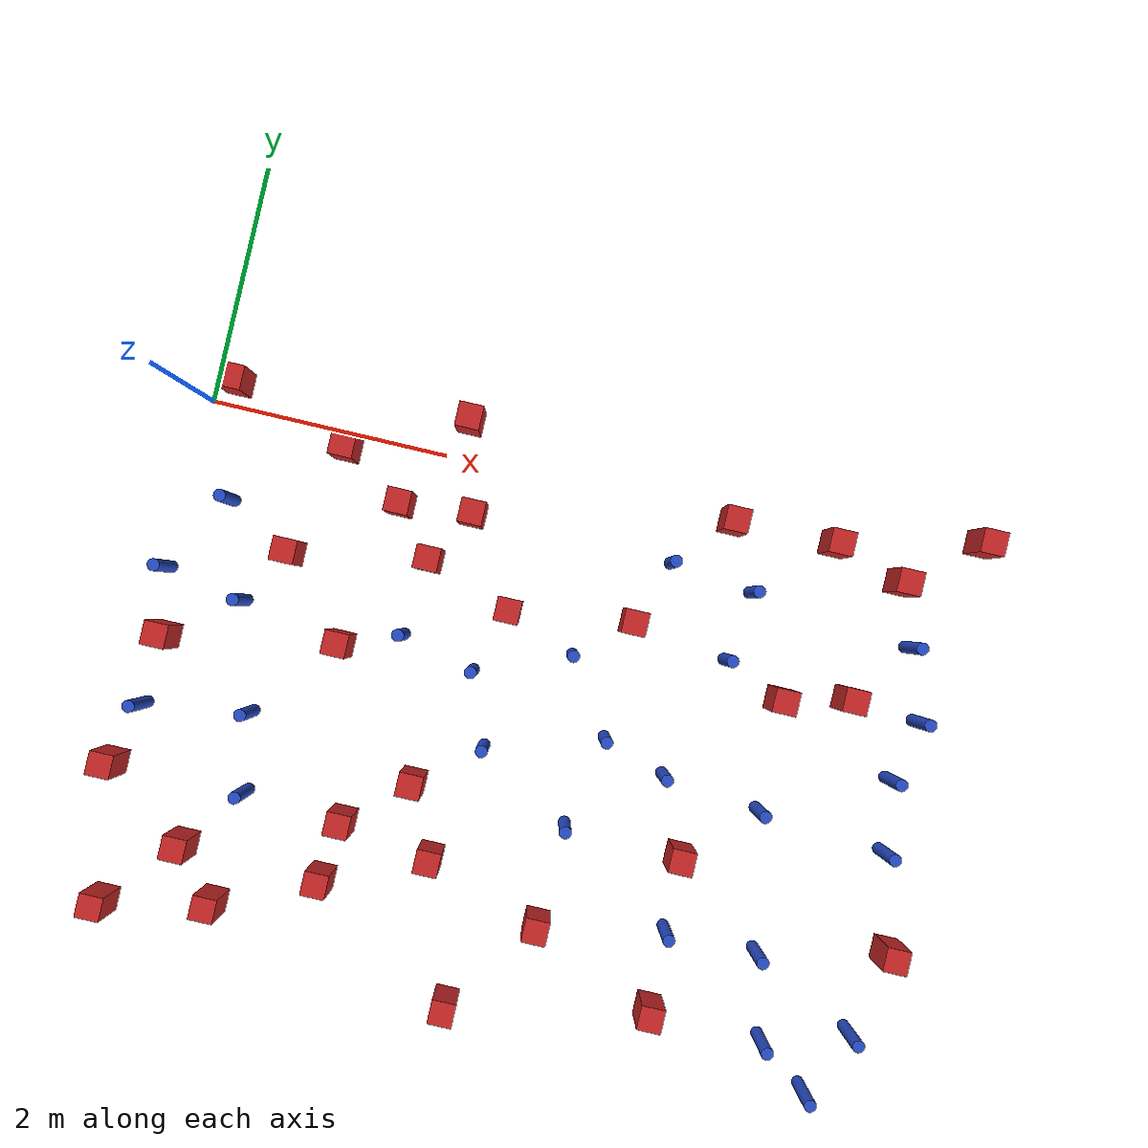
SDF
<sdf version="1.6">
 <model name="dense_38">
  <model name="square_post_obstacle0">
   <static>true</static>
   <pose>5.15000023231 -1.34860133683 8.22691968438e-08 7.2212513382e-06 -7.54495500217e-07 2.29674213826e-05</pose>
   <link name="link">
    <pose>0 0 0.25 0 -0 0</pose>
    <inertial>
     <mass>100</mass>
     <inertia>
      <ixx>0.166667</ixx>
      <ixy>0</ixy>
      <ixz>0</ixz>
      <iyy>0.166667</iyy>
      <iyz>0</iyz>
      <izz>0.166667</izz>
     </inertia>
    </inertial>
    <collision name="collision"><geometry><box><size>.2 .2 .5</size></box></geometry></collision>
    <visual name="visual">
     <geometry><box><size>.2 .2 .5</size></box></geometry>
     <material>
      <script><name>Gazebo/Red</name><uri>file://media/materials/scripts/gazebo.material</uri></script>
     </material>
    </visual>
   </link>
  </model>
  <model name="pole_obstacle0">
   <static>true</static>
   <pose>6.25939533136 -2.37629695557 2.88873142074e-08 -9.90536690245e-09 4.6021994898e-07 -1.20965994966e-07</pose>
   <link name="link">
    <pose>0 0 0.3 0 -0 0</pose>
    <inertial>
     <mass>1</mass>
     <inertia><ixx>0.145833</ixx><ixy>0</ixy><ixz>0</ixz><iyy>0.145833</iyy><iyz>0</iyz><izz>0.125</izz></inertia>
    </inertial>
    <collision name="collision">
     <geometry><cylinder><radius>0.05</radius><length>.6</length></cylinder></geometry>
    </collision>
    <visual name="visual">
     <geometry><cylinder><radius>0.05</radius><length>.6</length></cylinder></geometry>
     <material>
      <script><name>Gazebo/Blue</name><uri>file://media/materials/scripts/gazebo.material</uri></script>
     </material>
    </visual>
   </link>
  </model>
  <model name="square_post_obstacle9">
   <static>true</static>
   <pose>0.956388180386 -4.03698732437 8.22691968438e-08 7.22125133819e-06 -7.54495500217e-07 2.29674213826e-05</pose>
   <link name="link">
    <pose>0 0 0.25 0 -0 0</pose>
    <inertial>
     <mass>100</mass>
     <inertia>
      <ixx>0.166667</ixx>
      <ixy>0</ixy>
      <ixz>0</ixz>
      <iyy>0.166667</iyy>
      <iyz>0</iyz>
      <izz>0.166667</izz>
     </inertia>
    </inertial>
    <collision name="collision"><geometry><box><size>.2 .2 .5</size></box></geometry></collision>
    <visual name="visual">
     <geometry><box><size>.2 .2 .5</size></box></geometry>
     <material>
      <script><name>Gazebo/Red</name><uri>file://media/materials/scripts/gazebo.material</uri></script>
     </material>
    </visual>
   </link>
  </model>
  <model name="square_post_obstacle17">
   <static>true</static>
   <pose>4.66868153729 -4.08071297045 8.22691968438e-08 7.2212513382e-06 -7.54495500217e-07 2.29674213826e-05</pose>
   <link name="link">
    <pose>0 0 0.25 0 -0 0</pose>
    <inertial>
     <mass>100</mass>
     <inertia>
      <ixx>0.166667</ixx>
      <ixy>0</ixy>
      <ixz>0</ixz>
      <iyy>0.166667</iyy>
      <iyz>0</iyz>
      <izz>0.166667</izz>
     </inertia>
    </inertial>
    <collision name="collision"><geometry><box><size>.2 .2 .5</size></box></geometry></collision>
    <visual name="visual">
     <geometry><box><size>.2 .2 .5</size></box></geometry>
     <material>
      <script><name>Gazebo/Red</name><uri>file://media/materials/scripts/gazebo.material</uri></script>
     </material>
    </visual>
   </link>
  </model>
  <model name="square_post_obstacle20">
   <static>true</static>
   <pose>2.62762132053 -3.26762497386 8.22691968438e-08 7.2212513382e-06 -7.54495500217e-07 2.29674213826e-05</pose>
   <link name="link">
    <pose>0 0 0.25 0 -0 0</pose>
    <inertial>
     <mass>100</mass>
     <inertia>
      <ixx>0.166667</ixx>
      <ixy>0</ixy>
      <ixz>0</ixz>
      <iyy>0.166667</iyy>
      <iyz>0</iyz>
      <izz>0.166667</izz>
     </inertia>
    </inertial>
    <collision name="collision"><geometry><box><size>.2 .2 .5</size></box></geometry></collision>
    <visual name="visual">
     <geometry><box><size>.2 .2 .5</size></box></geometry>
     <material>
      <script><name>Gazebo/Red</name><uri>file://media/materials/scripts/gazebo.material</uri></script>
     </material>
    </visual>
   </link>
  </model>
  <model name="square_post_obstacle21">
   <static>true</static>
   <pose>0.0648391307138 -4.22650328789 8.22691968438e-08 7.22125133819e-06 -7.54495500217e-07 2.29674213826e-05</pose>
   <link name="link">
    <pose>0 0 0.25 0 -0 0</pose>
    <inertial>
     <mass>100</mass>
     <inertia>
      <ixx>0.166667</ixx>
      <ixy>0</ixy>
      <ixz>0</ixz>
      <iyy>0.166667</iyy>
      <iyz>0</iyz>
      <izz>0.166667</izz>
     </inertia>
    </inertial>
    <collision name="collision"><geometry><box><size>.2 .2 .5</size></box></geometry></collision>
    <visual name="visual">
     <geometry><box><size>.2 .2 .5</size></box></geometry>
     <material>
      <script><name>Gazebo/Red</name><uri>file://media/materials/scripts/gazebo.material</uri></script>
     </material>
    </visual>
   </link>
  </model>
  <model name="square_post_obstacle22">
   <static>true</static>
   <pose>0.930814888783 -1.07541116986 8.22691968438e-08 7.2212513382e-06 -7.54495500217e-07 2.29674213826e-05</pose>
   <link name="link">
    <pose>0 0 0.25 0 -0 0</pose>
    <inertial>
     <mass>100</mass>
     <inertia>
      <ixx>0.166667</ixx>
      <ixy>0</ixy>
      <ixz>0</ixz>
      <iyy>0.166667</iyy>
      <iyz>0</iyz>
      <izz>0.166667</izz>
     </inertia>
    </inertial>
    <collision name="collision"><geometry><box><size>.2 .2 .5</size></box></geometry></collision>
    <visual name="visual">
     <geometry><box><size>.2 .2 .5</size></box></geometry>
     <material>
      <script><name>Gazebo/Red</name><uri>file://media/materials/scripts/gazebo.material</uri></script>
     </material>
    </visual>
   </link>
  </model>
  <model name="pole_obstacle16">
   <static>true</static>
   <pose>-0.0267076855283 -1.42289226915 2.88873142074e-08 -9.90536690152e-09 4.60219948982e-07 -1.20965994964e-07</pose>
   <link name="link">
    <pose>0 0 0.3 0 -0 0</pose>
    <inertial>
     <mass>1</mass>
     <inertia><ixx>0.145833</ixx><ixy>0</ixy><ixz>0</ixz><iyy>0.145833</iyy><iyz>0</iyz><izz>0.125</izz></inertia>
    </inertial>
    <collision name="collision">
     <geometry><cylinder><radius>0.05</radius><length>.6</length></cylinder></geometry>
    </collision>
    <visual name="visual">
     <geometry><cylinder><radius>0.05</radius><length>.6</length></cylinder></geometry>
     <material>
      <script><name>Gazebo/Blue</name><uri>file://media/materials/scripts/gazebo.material</uri></script>
     </material>
    </visual>
   </link>
  </model>
  <model name="square_post_obstacle34">
   <static>true</static>
   <pose>3.0186149603 -4.41609404769 8.22691968438e-08 7.2212513382e-06 -7.54495500217e-07 2.29674213826e-05</pose>
   <link name="link">
    <pose>0 0 0.25 0 -0 0</pose>
    <inertial>
     <mass>100</mass>
     <inertia>
      <ixx>0.166667</ixx>
      <ixy>0</ixy>
      <ixz>0</ixz>
      <iyy>0.166667</iyy>
      <iyz>0</iyz>
      <izz>0.166667</izz>
     </inertia>
    </inertial>
    <collision name="collision"><geometry><box><size>.2 .2 .5</size></box></geometry></collision>
    <visual name="visual">
     <geometry><box><size>.2 .2 .5</size></box></geometry>
     <material>
      <script><name>Gazebo/Red</name><uri>file://media/materials/scripts/gazebo.material</uri></script>
     </material>
    </visual>
   </link>
  </model>
  <model name="square_post_obstacle45">
   <static>true</static>
   <pose>5.90532125554 -0.179946224838 8.22691968438e-08 7.2212513382e-06 -7.54495500217e-07 2.29674213826e-05</pose>
   <link name="link">
    <pose>0 0 0.25 0 -0 0</pose>
    <inertial>
     <mass>100</mass>
     <inertia>
      <ixx>0.166667</ixx>
      <ixy>0</ixy>
      <ixz>0</ixz>
      <iyy>0.166667</iyy>
      <iyz>0</iyz>
      <izz>0.166667</izz>
     </inertia>
    </inertial>
    <collision name="collision"><geometry><box><size>.2 .2 .5</size></box></geometry></collision>
    <visual name="visual">
     <geometry><box><size>.2 .2 .5</size></box></geometry>
     <material>
      <script><name>Gazebo/Red</name><uri>file://media/materials/scripts/gazebo.material</uri></script>
     </material>
    </visual>
   </link>
  </model>
  <model name="pole_obstacle49">
   <static>true</static>
   <pose>6.17570449695 -1.78283865451 2.88873142074e-08 -9.90536689445e-09 4.60219948999e-07 -1.20965994956e-07</pose>
   <link name="link">
    <pose>0 0 0.3 0 -0 0</pose>
    <inertial>
     <mass>1</mass>
     <inertia><ixx>0.145833</ixx><ixy>0</ixy><ixz>0</ixz><iyy>0.145833</iyy><iyz>0</iyz><izz>0.125</izz></inertia>
    </inertial>
    <collision name="collision">
     <geometry><cylinder><radius>0.05</radius><length>.6</length></cylinder></geometry>
    </collision>
    <visual name="visual">
     <geometry><cylinder><radius>0.05</radius><length>.6</length></cylinder></geometry>
     <material>
      <script><name>Gazebo/Blue</name><uri>file://media/materials/scripts/gazebo.material</uri></script>
     </material>
    </visual>
   </link>
  </model>
  <model name="square_post_obstacle53">
   <static>true</static>
   <pose>5.69838929538 -1.21689586837 8.22691968438e-08 7.2212513382e-06 -7.54495500217e-07 2.29674213826e-05</pose>
   <link name="link">
    <pose>0 0 0.25 0 -0 0</pose>
    <inertial>
     <mass>100</mass>
     <inertia>
      <ixx>0.166667</ixx>
      <ixy>0</ixy>
      <ixz>0</ixz>
      <iyy>0.166667</iyy>
      <iyz>0</iyz>
      <izz>0.166667</izz>
     </inertia>
    </inertial>
    <collision name="collision"><geometry><box><size>.2 .2 .5</size></box></geometry></collision>
    <visual name="visual">
     <geometry><box><size>.2 .2 .5</size></box></geometry>
     <material>
      <script><name>Gazebo/Red</name><uri>file://media/materials/scripts/gazebo.material</uri></script>
     </material>
    </visual>
   </link>
  </model>
  <model name="pole_obstacle51">
   <static>true</static>
   <pose>0.0334881697269 -2.56659124649 2.88873142074e-08 -9.9053669241e-09 4.60219948928e-07 -1.20965994988e-07</pose>
   <link name="link">
    <pose>0 0 0.3 0 -0 0</pose>
    <inertial>
     <mass>1</mass>
     <inertia><ixx>0.145833</ixx><ixy>0</ixy><ixz>0</ixz><iyy>0.145833</iyy><iyz>0</iyz><izz>0.125</izz></inertia>
    </inertial>
    <collision name="collision">
     <geometry><cylinder><radius>0.05</radius><length>.6</length></cylinder></geometry>
    </collision>
    <visual name="visual">
     <geometry><cylinder><radius>0.05</radius><length>.6</length></cylinder></geometry>
     <material>
      <script><name>Gazebo/Blue</name><uri>file://media/materials/scripts/gazebo.material</uri></script>
     </material>
    </visual>
   </link>
  </model>
  <model name="square_post_obstacle56">
   <static>true</static>
   <pose>2.14393742067 0.316335618549 8.22691968438e-08 7.2212513382e-06 -7.54495500217e-07 2.29674213826e-05</pose>
   <link name="link">
    <pose>0 0 0.25 0 -0 0</pose>
    <inertial>
     <mass>100</mass>
     <inertia>
      <ixx>0.166667</ixx>
      <ixy>0</ixy>
      <ixz>0</ixz>
      <iyy>0.166667</iyy>
      <iyz>0</iyz>
      <izz>0.166667</izz>
     </inertia>
    </inertial>
    <collision name="collision"><geometry><box><size>.2 .2 .5</size></box></geometry></collision>
    <visual name="visual">
     <geometry><box><size>.2 .2 .5</size></box></geometry>
     <material>
      <script><name>Gazebo/Red</name><uri>file://media/materials/scripts/gazebo.material</uri></script>
     </material>
    </visual>
   </link>
  </model>
  <model name="pole_obstacle53">
   <static>true</static>
   <pose>0.36021376546 -0.764932567973 2.88873142074e-08 -9.9053668986e-09 4.60219948989e-07 -1.20965994961e-07</pose>
   <link name="link">
    <pose>0 0 0.3 0 -0 0</pose>
    <inertial>
     <mass>1</mass>
     <inertia><ixx>0.145833</ixx><ixy>0</ixy><ixz>0</ixz><iyy>0.145833</iyy><iyz>0</iyz><izz>0.125</izz></inertia>
    </inertial>
    <collision name="collision">
     <geometry><cylinder><radius>0.05</radius><length>.6</length></cylinder></geometry>
    </collision>
    <visual name="visual">
     <geometry><cylinder><radius>0.05</radius><length>.6</length></cylinder></geometry>
     <material>
      <script><name>Gazebo/Blue</name><uri>file://media/materials/scripts/gazebo.material</uri></script>
     </material>
    </visual>
   </link>
  </model>
  <model name="pole_obstacle57">
   <static>true</static>
   <pose>3.81146176893 -1.98575136678 2.88873142074e-08 -9.90536689589e-09 4.60219948995e-07 -1.20965994957e-07</pose>
   <link name="link">
    <pose>0 0 0.3 0 -0 0</pose>
    <inertial>
     <mass>1</mass>
     <inertia><ixx>0.145833</ixx><ixy>0</ixy><ixz>0</ixz><iyy>0.145833</iyy><iyz>0</iyz><izz>0.125</izz></inertia>
    </inertial>
    <collision name="collision">
     <geometry><cylinder><radius>0.05</radius><length>.6</length></cylinder></geometry>
    </collision>
    <visual name="visual">
     <geometry><cylinder><radius>0.05</radius><length>.6</length></cylinder></geometry>
     <material>
      <script><name>Gazebo/Blue</name><uri>file://media/materials/scripts/gazebo.material</uri></script>
     </material>
    </visual>
   </link>
  </model>
  <model name="pole_obstacle59">
   <static>true</static>
   <pose>0.915173070467 -2.43668406248 2.88873142074e-08 -9.90536689636e-09 4.60219948994e-07 -1.20965994958e-07</pose>
   <link name="link">
    <pose>0 0 0.3 0 -0 0</pose>
    <inertial>
     <mass>1</mass>
     <inertia><ixx>0.145833</ixx><ixy>0</ixy><ixz>0</ixz><iyy>0.145833</iyy><iyz>0</iyz><izz>0.125</izz></inertia>
    </inertial>
    <collision name="collision">
     <geometry><cylinder><radius>0.05</radius><length>.6</length></cylinder></geometry>
    </collision>
    <visual name="visual">
     <geometry><cylinder><radius>0.05</radius><length>.6</length></cylinder></geometry>
     <material>
      <script><name>Gazebo/Blue</name><uri>file://media/materials/scripts/gazebo.material</uri></script>
     </material>
    </visual>
   </link>
  </model>
  <model name="pole_obstacle61">
   <static>true</static>
   <pose>5.61702403845 -4.10796681776 2.88873142074e-08 -9.90536690842e-09 4.60219948965e-07 -1.20965994976e-07</pose>
   <link name="link">
    <pose>0 0 0.3 0 -0 0</pose>
    <inertial>
     <mass>1</mass>
     <inertia><ixx>0.145833</ixx><ixy>0</ixy><ixz>0</ixz><iyy>0.145833</iyy><iyz>0</iyz><izz>0.125</izz></inertia>
    </inertial>
    <collision name="collision">
     <geometry><cylinder><radius>0.05</radius><length>.6</length></cylinder></geometry>
    </collision>
    <visual name="visual">
     <geometry><cylinder><radius>0.05</radius><length>.6</length></cylinder></geometry>
     <material>
      <script><name>Gazebo/Blue</name><uri>file://media/materials/scripts/gazebo.material</uri></script>
     </material>
    </visual>
   </link>
  </model>
  <model name="pole_obstacle62">
   <static>true</static>
   <pose>0.6490932267 -1.55136444286 2.88873142074e-08 -9.90536689855e-09 4.60219948989e-07 -1.20965994962e-07</pose>
   <link name="link">
    <pose>0 0 0.3 0 -0 0</pose>
    <inertial>
     <mass>1</mass>
     <inertia><ixx>0.145833</ixx><ixy>0</ixy><ixz>0</ixz><iyy>0.145833</iyy><iyz>0</iyz><izz>0.125</izz></inertia>
    </inertial>
    <collision name="collision">
     <geometry><cylinder><radius>0.05</radius><length>.6</length></cylinder></geometry>
    </collision>
    <visual name="visual">
     <geometry><cylinder><radius>0.05</radius><length>.6</length></cylinder></geometry>
     <material>
      <script><name>Gazebo/Blue</name><uri>file://media/materials/scripts/gazebo.material</uri></script>
     </material>
    </visual>
   </link>
  </model>
  <model name="pole_obstacle63">
   <static>true</static>
   <pose>3.39751263166 -1.37505485379 2.88873142074e-08 -9.90536689395e-09 4.60219949e-07 -1.20965994953e-07</pose>
   <link name="link">
    <pose>0 0 0.3 0 -0 0</pose>
    <inertial>
     <mass>1</mass>
     <inertia><ixx>0.145833</ixx><ixy>0</ixy><ixz>0</ixz><iyy>0.145833</iyy><iyz>0</iyz><izz>0.125</izz></inertia>
    </inertial>
    <collision name="collision">
     <geometry><cylinder><radius>0.05</radius><length>.6</length></cylinder></geometry>
    </collision>
    <visual name="visual">
     <geometry><cylinder><radius>0.05</radius><length>.6</length></cylinder></geometry>
     <material>
      <script><name>Gazebo/Blue</name><uri>file://media/materials/scripts/gazebo.material</uri></script>
     </material>
    </visual>
   </link>
  </model>
  <model name="square_post_obstacle66">
   <static>true</static>
   <pose>0.611960380364 -3.62256733812 8.22691968438e-08 7.2212513382e-06 -7.54495500217e-07 2.29674213826e-05</pose>
   <link name="link">
    <pose>0 0 0.25 0 -0 0</pose>
    <inertial>
     <mass>100</mass>
     <inertia>
      <ixx>0.166667</ixx>
      <ixy>0</ixy>
      <ixz>0</ixz>
      <iyy>0.166667</iyy>
      <iyz>0</iyz>
      <izz>0.166667</izz>
     </inertia>
    </inertial>
    <collision name="collision"><geometry><box><size>.2 .2 .5</size></box></geometry></collision>
    <visual name="visual">
     <geometry><box><size>.2 .2 .5</size></box></geometry>
     <material>
      <script><name>Gazebo/Red</name><uri>file://media/materials/scripts/gazebo.material</uri></script>
     </material>
    </visual>
   </link>
  </model>
  <model name="square_post_obstacle70">
   <static>true</static>
   <pose>1.1983245508 -0.134393072571 8.22691968438e-08 7.2212513382e-06 -7.54495500217e-07 2.29674213826e-05</pose>
   <link name="link">
    <pose>0 0 0.25 0 -0 0</pose>
    <inertial>
     <mass>100</mass>
     <inertia>
      <ixx>0.166667</ixx>
      <ixy>0</ixy>
      <ixz>0</ixz>
      <iyy>0.166667</iyy>
      <iyz>0</iyz>
      <izz>0.166667</izz>
     </inertia>
    </inertial>
    <collision name="collision"><geometry><box><size>.2 .2 .5</size></box></geometry></collision>
    <visual name="visual">
     <geometry><box><size>.2 .2 .5</size></box></geometry>
     <material>
      <script><name>Gazebo/Red</name><uri>file://media/materials/scripts/gazebo.material</uri></script>
     </material>
    </visual>
   </link>
  </model>
  <model name="pole_obstacle67">
   <static>true</static>
   <pose>4.64180337466 -1.12756635979 2.88873142074e-08 -9.90536689445e-09 4.60219948999e-07 -1.20965994956e-07</pose>
   <link name="link">
    <pose>0 0 0.3 0 -0 0</pose>
    <inertial>
     <mass>1</mass>
     <inertia><ixx>0.145833</ixx><ixy>0</ixy><ixz>0</ixz><iyy>0.145833</iyy><iyz>0</iyz><izz>0.125</izz></inertia>
    </inertial>
    <collision name="collision">
     <geometry><cylinder><radius>0.05</radius><length>.6</length></cylinder></geometry>
    </collision>
    <visual name="visual">
     <geometry><cylinder><radius>0.05</radius><length>.6</length></cylinder></geometry>
     <material>
      <script><name>Gazebo/Blue</name><uri>file://media/materials/scripts/gazebo.material</uri></script>
     </material>
    </visual>
   </link>
  </model>
  <model name="square_post_obstacle72">
   <static>true</static>
   <pose>1.73642511763 -0.480586093212 8.22691968438e-08 7.2212513382e-06 -7.54495500217e-07 2.29674213826e-05</pose>
   <link name="link">
    <pose>0 0 0.25 0 -0 0</pose>
    <inertial>
     <mass>100</mass>
     <inertia>
      <ixx>0.166667</ixx>
      <ixy>0</ixy>
      <ixz>0</ixz>
      <iyy>0.166667</iyy>
      <iyz>0</iyz>
      <izz>0.166667</izz>
     </inertia>
    </inertial>
    <collision name="collision"><geometry><box><size>.2 .2 .5</size></box></geometry></collision>
    <visual name="visual">
     <geometry><box><size>.2 .2 .5</size></box></geometry>
     <material>
      <script><name>Gazebo/Red</name><uri>file://media/materials/scripts/gazebo.material</uri></script>
     </material>
    </visual>
   </link>
  </model>
  <model name="pole_obstacle70">
   <static>true</static>
   <pose>5.17681594677 -2.2753764297 2.88873142074e-08 -9.90536690245e-09 4.6021994898e-07 -1.20965994966e-07</pose>
   <link name="link">
    <pose>0 0 0.3 0 -0 0</pose>
    <inertial>
     <mass>1</mass>
     <inertia><ixx>0.145833</ixx><ixy>0</ixy><ixz>0</ixz><iyy>0.145833</iyy><iyz>0</iyz><izz>0.125</izz></inertia>
    </inertial>
    <collision name="collision">
     <geometry><cylinder><radius>0.05</radius><length>.6</length></cylinder></geometry>
    </collision>
    <visual name="visual">
     <geometry><cylinder><radius>0.05</radius><length>.6</length></cylinder></geometry>
     <material>
      <script><name>Gazebo/Blue</name><uri>file://media/materials/scripts/gazebo.material</uri></script>
     </material>
    </visual>
   </link>
  </model>
  <model name="pole_obstacle71">
   <static>true</static>
   <pose>1.99498741161 -1.52946648929 2.88873142074e-08 -9.90536691173e-09 4.60219948958e-07 -1.20965994982e-07</pose>
   <link name="link">
    <pose>0 0 0.3 0 -0 0</pose>
    <inertial>
     <mass>1</mass>
     <inertia><ixx>0.145833</ixx><ixy>0</ixy><ixz>0</ixz><iyy>0.145833</iyy><iyz>0</iyz><izz>0.125</izz></inertia>
    </inertial>
    <collision name="collision">
     <geometry><cylinder><radius>0.05</radius><length>.6</length></cylinder></geometry>
    </collision>
    <visual name="visual">
     <geometry><cylinder><radius>0.05</radius><length>.6</length></cylinder></geometry>
     <material>
      <script><name>Gazebo/Blue</name><uri>file://media/materials/scripts/gazebo.material</uri></script>
     </material>
    </visual>
   </link>
  </model>
  <model name="pole_obstacle72">
   <static>true</static>
   <pose>5.41871702903 -3.41380591752 2.88873142074e-08 -9.90536690245e-09 4.6021994898e-07 -1.20965994966e-07</pose>
   <link name="link">
    <pose>0 0 0.3 0 -0 0</pose>
    <inertial>
     <mass>1</mass>
     <inertia><ixx>0.145833</ixx><ixy>0</ixy><ixz>0</ixz><iyy>0.145833</iyy><iyz>0</iyz><izz>0.125</izz></inertia>
    </inertial>
    <collision name="collision">
     <geometry><cylinder><radius>0.05</radius><length>.6</length></cylinder></geometry>
    </collision>
    <visual name="visual">
     <geometry><cylinder><radius>0.05</radius><length>.6</length></cylinder></geometry>
     <material>
      <script><name>Gazebo/Blue</name><uri>file://media/materials/scripts/gazebo.material</uri></script>
     </material>
    </visual>
   </link>
  </model>
  <model name="pole_obstacle80">
   <static>true</static>
   <pose>2.62581547635 -1.68750381354 2.88873142074e-08 -9.90536689395e-09 4.60219949e-07 -1.20965994953e-07</pose>
   <link name="link">
    <pose>0 0 0.3 0 -0 0</pose>
    <inertial>
     <mass>1</mass>
     <inertia><ixx>0.145833</ixx><ixy>0</ixy><ixz>0</ixz><iyy>0.145833</iyy><iyz>0</iyz><izz>0.125</izz></inertia>
    </inertial>
    <collision name="collision">
     <geometry><cylinder><radius>0.05</radius><length>.6</length></cylinder></geometry>
    </collision>
    <visual name="visual">
     <geometry><cylinder><radius>0.05</radius><length>.6</length></cylinder></geometry>
     <material>
      <script><name>Gazebo/Blue</name><uri>file://media/materials/scripts/gazebo.material</uri></script>
     </material>
    </visual>
   </link>
  </model>
  <model name="pole_obstacle94">
   <static>true</static>
   <pose>6.29122546616 -1.26858974739 2.88873142074e-08 -9.90536689445e-09 4.60219948999e-07 -1.20965994956e-07</pose>
   <link name="link">
    <pose>0 0 0.3 0 -0 0</pose>
    <inertial>
     <mass>1</mass>
     <inertia><ixx>0.145833</ixx><ixy>0</ixy><ixz>0</ixz><iyy>0.145833</iyy><iyz>0</iyz><izz>0.125</izz></inertia>
    </inertial>
    <collision name="collision">
     <geometry><cylinder><radius>0.05</radius><length>.6</length></cylinder></geometry>
    </collision>
    <visual name="visual">
     <geometry><cylinder><radius>0.05</radius><length>.6</length></cylinder></geometry>
     <material>
      <script><name>Gazebo/Blue</name><uri>file://media/materials/scripts/gazebo.material</uri></script>
     </material>
    </visual>
   </link>
  </model>
  <model name="square_post_obstacle88">
   <static>true</static>
   <pose>1.78910252763 -3.64294460698 8.22691968438e-08 7.2212513382e-06 -7.54495500217e-07 2.29674213826e-05</pose>
   <link name="link">
    <pose>0 0 0.25 0 -0 0</pose>
    <inertial>
     <mass>100</mass>
     <inertia>
      <ixx>0.166667</ixx>
      <ixy>0</ixy>
      <ixz>0</ixz>
      <iyy>0.166667</iyy>
      <iyz>0</iyz>
      <izz>0.166667</izz>
     </inertia>
    </inertial>
    <collision name="collision"><geometry><box><size>.2 .2 .5</size></box></geometry></collision>
    <visual name="visual">
     <geometry><box><size>.2 .2 .5</size></box></geometry>
     <material>
      <script><name>Gazebo/Red</name><uri>file://media/materials/scripts/gazebo.material</uri></script>
     </material>
    </visual>
   </link>
  </model>
  <model name="pole_obstacle101">
   <static>true</static>
   <pose>3.65120811873 -2.75701727651 2.88873142074e-08 -9.90536690232e-09 4.6021994898e-07 -1.20965994968e-07</pose>
   <link name="link">
    <pose>0 0 0.3 0 -0 0</pose>
    <inertial>
     <mass>1</mass>
     <inertia><ixx>0.145833</ixx><ixy>0</ixy><ixz>0</ixz><iyy>0.145833</iyy><iyz>0</iyz><izz>0.125</izz></inertia>
    </inertial>
    <collision name="collision">
     <geometry><cylinder><radius>0.05</radius><length>.6</length></cylinder></geometry>
    </collision>
    <visual name="visual">
     <geometry><cylinder><radius>0.05</radius><length>.6</length></cylinder></geometry>
     <material>
      <script><name>Gazebo/Blue</name><uri>file://media/materials/scripts/gazebo.material</uri></script>
     </material>
    </visual>
   </link>
  </model>
  <model name="square_post_obstacle91">
   <static>true</static>
   <pose>2.33659479608 -0.430204943164 8.22691968438e-08 7.2212513382e-06 -7.54495500217e-07 2.29674213826e-05</pose>
   <link name="link">
    <pose>0 0 0.25 0 -0 0</pose>
    <inertial>
     <mass>100</mass>
     <inertia>
      <ixx>0.166667</ixx>
      <ixy>0</ixy>
      <ixz>0</ixz>
      <iyy>0.166667</iyy>
      <iyz>0</iyz>
      <izz>0.166667</izz>
     </inertia>
    </inertial>
    <collision name="collision"><geometry><box><size>.2 .2 .5</size></box></geometry></collision>
    <visual name="visual">
     <geometry><box><size>.2 .2 .5</size></box></geometry>
     <material>
      <script><name>Gazebo/Red</name><uri>file://media/materials/scripts/gazebo.material</uri></script>
     </material>
    </visual>
   </link>
  </model>
  <model name="square_post_obstacle96">
   <static>true</static>
   <pose>1.8545225363 -3.13658529245 8.22691968438e-08 7.2212513382e-06 -7.54495500217e-07 2.29674213826e-05</pose>
   <link name="link">
    <pose>0 0 0.25 0 -0 0</pose>
    <inertial>
     <mass>100</mass>
     <inertia>
      <ixx>0.166667</ixx>
      <ixy>0</ixy>
      <ixz>0</ixz>
      <iyy>0.166667</iyy>
      <iyz>0</iyz>
      <izz>0.166667</izz>
     </inertia>
    </inertial>
    <collision name="collision"><geometry><box><size>.2 .2 .5</size></box></geometry></collision>
    <visual name="visual">
     <geometry><box><size>.2 .2 .5</size></box></geometry>
     <material>
      <script><name>Gazebo/Red</name><uri>file://media/materials/scripts/gazebo.material</uri></script>
     </material>
    </visual>
   </link>
  </model>
  <model name="pole_obstacle109">
   <static>true</static>
   <pose>4.02232846109 -0.450491445531 2.88873142074e-08 -9.90536689318e-09 4.60219949002e-07 -1.20965994954e-07</pose>
   <link name="link">
    <pose>0 0 0.3 0 -0 0</pose>
    <inertial>
     <mass>1</mass>
     <inertia><ixx>0.145833</ixx><ixy>0</ixy><ixz>0</ixz><iyy>0.145833</iyy><iyz>0</iyz><izz>0.125</izz></inertia>
    </inertial>
    <collision name="collision">
     <geometry><cylinder><radius>0.05</radius><length>.6</length></cylinder></geometry>
    </collision>
    <visual name="visual">
     <geometry><cylinder><radius>0.05</radius><length>.6</length></cylinder></geometry>
     <material>
      <script><name>Gazebo/Blue</name><uri>file://media/materials/scripts/gazebo.material</uri></script>
     </material>
    </visual>
   </link>
  </model>
  <model name="square_post_obstacle106">
   <static>true</static>
   <pose>2.0708841121 -0.876182557828 8.22691968438e-08 7.2212513382e-06 -7.54495500217e-07 2.29674213826e-05</pose>
   <link name="link">
    <pose>0 0 0.25 0 -0 0</pose>
    <inertial>
     <mass>100</mass>
     <inertia>
      <ixx>0.166667</ixx>
      <ixy>0</ixy>
      <ixz>0</ixz>
      <iyy>0.166667</iyy>
      <iyz>0</iyz>
      <izz>0.166667</izz>
     </inertia>
    </inertial>
    <collision name="collision"><geometry><box><size>.2 .2 .5</size></box></geometry></collision>
    <visual name="visual">
     <geometry><box><size>.2 .2 .5</size></box></geometry>
     <material>
      <script><name>Gazebo/Red</name><uri>file://media/materials/scripts/gazebo.material</uri></script>
     </material>
    </visual>
   </link>
  </model>
  <model name="pole_obstacle119">
   <static>true</static>
   <pose>6.31004379209 -3.88591678296 2.88873142074e-08 -9.90536690245e-09 4.6021994898e-07 -1.20965994966e-07</pose>
   <link name="link">
    <pose>0 0 0.3 0 -0 0</pose>
    <inertial>
     <mass>1</mass>
     <inertia><ixx>0.145833</ixx><ixy>0</ixy><ixz>0</ixz><iyy>0.145833</iyy><iyz>0</iyz><izz>0.125</izz></inertia>
    </inertial>
    <collision name="collision">
     <geometry><cylinder><radius>0.05</radius><length>.6</length></cylinder></geometry>
    </collision>
    <visual name="visual">
     <geometry><cylinder><radius>0.05</radius><length>.6</length></cylinder></geometry>
     <material>
      <script><name>Gazebo/Blue</name><uri>file://media/materials/scripts/gazebo.material</uri></script>
     </material>
    </visual>
   </link>
  </model>
  <model name="pole_obstacle123">
   <static>true</static>
   <pose>6.09028594662 -0.686654510738 2.88873142074e-08 -9.90536689837e-09 4.60219948989e-07 -1.2096599496e-07</pose>
   <link name="link">
    <pose>0 0 0.3 0 -0 0</pose>
    <inertial>
     <mass>1</mass>
     <inertia><ixx>0.145833</ixx><ixy>0</ixy><ixz>0</ixz><iyy>0.145833</iyy><iyz>0</iyz><izz>0.125</izz></inertia>
    </inertial>
    <collision name="collision">
     <geometry><cylinder><radius>0.05</radius><length>.6</length></cylinder></geometry>
    </collision>
    <visual name="visual">
     <geometry><cylinder><radius>0.05</radius><length>.6</length></cylinder></geometry>
     <material>
      <script><name>Gazebo/Blue</name><uri>file://media/materials/scripts/gazebo.material</uri></script>
     </material>
    </visual>
   </link>
  </model>
  <model name="pole_obstacle128">
   <static>true</static>
   <pose>2.85326195724 -2.27970721354 2.88873142074e-08 -9.90536690232e-09 4.6021994898e-07 -1.20965994968e-07</pose>
   <link name="link">
    <pose>0 0 0.3 0 -0 0</pose>
    <inertial>
     <mass>1</mass>
     <inertia><ixx>0.145833</ixx><ixy>0</ixy><ixz>0</ixz><iyy>0.145833</iyy><iyz>0</iyz><izz>0.125</izz></inertia>
    </inertial>
    <collision name="collision">
     <geometry><cylinder><radius>0.05</radius><length>.6</length></cylinder></geometry>
    </collision>
    <visual name="visual">
     <geometry><cylinder><radius>0.05</radius><length>.6</length></cylinder></geometry>
     <material>
      <script><name>Gazebo/Blue</name><uri>file://media/materials/scripts/gazebo.material</uri></script>
     </material>
    </visual>
   </link>
  </model>
  <model name="pole_obstacle130">
   <static>true</static>
   <pose>6.0434853394 -4.43294765035 2.88873142074e-08 -9.90536690842e-09 4.60219948965e-07 -1.20965994976e-07</pose>
   <link name="link">
    <pose>0 0 0.3 0 -0 0</pose>
    <inertial>
     <mass>1</mass>
     <inertia><ixx>0.145833</ixx><ixy>0</ixy><ixz>0</ixz><iyy>0.145833</iyy><iyz>0</iyz><izz>0.125</izz></inertia>
    </inertial>
    <collision name="collision">
     <geometry><cylinder><radius>0.05</radius><length>.6</length></cylinder></geometry>
    </collision>
    <visual name="visual">
     <geometry><cylinder><radius>0.05</radius><length>.6</length></cylinder></geometry>
     <material>
      <script><name>Gazebo/Blue</name><uri>file://media/materials/scripts/gazebo.material</uri></script>
     </material>
    </visual>
   </link>
  </model>
  <model name="square_post_obstacle118">
   <static>true</static>
   <pose>4.43737677165 -0.00359077023074 8.22691968438e-08 7.2212513382e-06 -7.54495500217e-07 2.29674213826e-05</pose>
   <link name="link">
    <pose>0 0 0.25 0 -0 0</pose>
    <inertial>
     <mass>100</mass>
     <inertia>
      <ixx>0.166667</ixx>
      <ixy>0</ixy>
      <ixz>0</ixz>
      <iyy>0.166667</iyy>
      <iyz>0</iyz>
      <izz>0.166667</izz>
     </inertia>
    </inertial>
    <collision name="collision"><geometry><box><size>.2 .2 .5</size></box></geometry></collision>
    <visual name="visual">
     <geometry><box><size>.2 .2 .5</size></box></geometry>
     <material>
      <script><name>Gazebo/Red</name><uri>file://media/materials/scripts/gazebo.material</uri></script>
     </material>
    </visual>
   </link>
  </model>
  <model name="pole_obstacle137">
   <static>true</static>
   <pose>4.34989120041 -2.17046273704 2.88873142074e-08 -9.90536690245e-09 4.6021994898e-07 -1.20965994966e-07</pose>
   <link name="link">
    <pose>0 0 0.3 0 -0 0</pose>
    <inertial>
     <mass>1</mass>
     <inertia><ixx>0.145833</ixx><ixy>0</ixy><ixz>0</ixz><iyy>0.145833</iyy><iyz>0</iyz><izz>0.125</izz></inertia>
    </inertial>
    <collision name="collision">
     <geometry><cylinder><radius>0.05</radius><length>.6</length></cylinder></geometry>
    </collision>
    <visual name="visual">
     <geometry><cylinder><radius>0.05</radius><length>.6</length></cylinder></geometry>
     <material>
      <script><name>Gazebo/Blue</name><uri>file://media/materials/scripts/gazebo.material</uri></script>
     </material>
    </visual>
   </link>
  </model>
  <model name="square_post_obstacle129">
   <static>true</static>
   <pose>0.199798544515 0.197139147483 8.22691968438e-08 7.2212513382e-06 -7.54495500217e-07 2.29674213826e-05</pose>
   <link name="link">
    <pose>0 0 0.25 0 -0 0</pose>
    <inertial>
     <mass>100</mass>
     <inertia>
      <ixx>0.166667</ixx>
      <ixy>0</ixy>
      <ixz>0</ixz>
      <iyy>0.166667</iyy>
      <iyz>0</iyz>
      <izz>0.166667</izz>
     </inertia>
    </inertial>
    <collision name="collision"><geometry><box><size>.2 .2 .5</size></box></geometry></collision>
    <visual name="visual">
     <geometry><box><size>.2 .2 .5</size></box></geometry>
     <material>
      <script><name>Gazebo/Red</name><uri>file://media/materials/scripts/gazebo.material</uri></script>
     </material>
    </visual>
   </link>
  </model>
  <model name="square_post_obstacle132">
   <static>true</static>
   <pose>2.34876896496 -2.69582094003 8.22691968438e-08 7.2212513382e-06 -7.54495500217e-07 2.29674213826e-05</pose>
   <link name="link">
    <pose>0 0 0.25 0 -0 0</pose>
    <inertial>
     <mass>100</mass>
     <inertia>
      <ixx>0.166667</ixx>
      <ixy>0</ixy>
      <ixz>0</ixz>
      <iyy>0.166667</iyy>
      <iyz>0</iyz>
      <izz>0.166667</izz>
     </inertia>
    </inertial>
    <collision name="collision"><geometry><box><size>.2 .2 .5</size></box></geometry></collision>
    <visual name="visual">
     <geometry><box><size>.2 .2 .5</size></box></geometry>
     <material>
      <script><name>Gazebo/Red</name><uri>file://media/materials/scripts/gazebo.material</uri></script>
     </material>
    </visual>
   </link>
  </model>
  <model name="square_post_obstacle136">
   <static>true</static>
   <pose>2.80031703807 -1.13973005808 8.22691968438e-08 7.2212513382e-06 -7.54495500217e-07 2.29674213826e-05</pose>
   <link name="link">
    <pose>0 0 0.25 0 -0 0</pose>
    <inertial>
     <mass>100</mass>
     <inertia>
      <ixx>0.166667</ixx>
      <ixy>0</ixy>
      <ixz>0</ixz>
      <iyy>0.166667</iyy>
      <iyz>0</iyz>
      <izz>0.166667</izz>
     </inertia>
    </inertial>
    <collision name="collision"><geometry><box><size>.2 .2 .5</size></box></geometry></collision>
    <visual name="visual">
     <geometry><box><size>.2 .2 .5</size></box></geometry>
     <material>
      <script><name>Gazebo/Red</name><uri>file://media/materials/scripts/gazebo.material</uri></script>
     </material>
    </visual>
   </link>
  </model>
  <model name="square_post_obstacle147">
   <static>true</static>
   <pose>3.8242705099 -1.00178346201 8.22691968438e-08 7.2212513382e-06 -7.54495500217e-07 2.29674213826e-05</pose>
   <link name="link">
    <pose>0 0 0.25 0 -0 0</pose>
    <inertial>
     <mass>100</mass>
     <inertia>
      <ixx>0.166667</ixx>
      <ixy>0</ixy>
      <ixz>0</ixz>
      <iyy>0.166667</iyy>
      <iyz>0</iyz>
      <izz>0.166667</izz>
     </inertia>
    </inertial>
    <collision name="collision"><geometry><box><size>.2 .2 .5</size></box></geometry></collision>
    <visual name="visual">
     <geometry><box><size>.2 .2 .5</size></box></geometry>
     <material>
      <script><name>Gazebo/Red</name><uri>file://media/materials/scripts/gazebo.material</uri></script>
     </material>
    </visual>
   </link>
  </model>
  <model name="square_post_obstacle152">
   <static>true</static>
   <pose>0.0774229581429 -1.97156801339 8.22691968438e-08 7.2212513382e-06 -7.54495500217e-07 2.29674213826e-05</pose>
   <link name="link">
    <pose>0 0 0.25 0 -0 0</pose>
    <inertial>
     <mass>100</mass>
     <inertia>
      <ixx>0.166667</ixx>
      <ixy>0</ixy>
      <ixz>0</ixz>
      <iyy>0.166667</iyy>
      <iyz>0</iyz>
      <izz>0.166667</izz>
     </inertia>
    </inertial>
    <collision name="collision"><geometry><box><size>.2 .2 .5</size></box></geometry></collision>
    <visual name="visual">
     <geometry><box><size>.2 .2 .5</size></box></geometry>
     <material>
      <script><name>Gazebo/Red</name><uri>file://media/materials/scripts/gazebo.material</uri></script>
     </material>
    </visual>
   </link>
  </model>
  <model name="square_post_obstacle160">
   <static>true</static>
   <pose>1.50700979579 -1.71761885528 8.22691968438e-08 7.2212513382e-06 -7.54495500217e-07 2.29674213826e-05</pose>
   <link name="link">
    <pose>0 0 0.25 0 -0 0</pose>
    <inertial>
     <mass>100</mass>
     <inertia>
      <ixx>0.166667</ixx>
      <ixy>0</ixy>
      <ixz>0</ixz>
      <iyy>0.166667</iyy>
      <iyz>0</iyz>
      <izz>0.166667</izz>
     </inertia>
    </inertial>
    <collision name="collision"><geometry><box><size>.2 .2 .5</size></box></geometry></collision>
    <visual name="visual">
     <geometry><box><size>.2 .2 .5</size></box></geometry>
     <material>
      <script><name>Gazebo/Red</name><uri>file://media/materials/scripts/gazebo.material</uri></script>
     </material>
    </visual>
   </link>
  </model>
  <model name="square_post_obstacle161">
   <static>true</static>
   <pose>3.60519646206 -3.60557014948 8.22691968438e-08 7.2212513382e-06 -7.54495500217e-07 2.29674213826e-05</pose>
   <link name="link">
    <pose>0 0 0.25 0 -0 0</pose>
    <inertial>
     <mass>100</mass>
     <inertia>
      <ixx>0.166667</ixx>
      <ixy>0</ixy>
      <ixz>0</ixz>
      <iyy>0.166667</iyy>
      <iyz>0</iyz>
      <izz>0.166667</izz>
     </inertia>
    </inertial>
    <collision name="collision"><geometry><box><size>.2 .2 .5</size></box></geometry></collision>
    <visual name="visual">
     <geometry><box><size>.2 .2 .5</size></box></geometry>
     <material>
      <script><name>Gazebo/Red</name><uri>file://media/materials/scripts/gazebo.material</uri></script>
     </material>
    </visual>
   </link>
  </model>
  <model name="square_post_obstacle165">
   <static>true</static>
   <pose>6.48856988828 -3.17743948394 8.22691968438e-08 7.2212513382e-06 -7.54495500217e-07 2.29674213826e-05</pose>
   <link name="link">
    <pose>0 0 0.25 0 -0 0</pose>
    <inertial>
     <mass>100</mass>
     <inertia>
      <ixx>0.166667</ixx>
      <ixy>0</ixy>
      <ixz>0</ixz>
      <iyy>0.166667</iyy>
      <iyz>0</iyz>
      <izz>0.166667</izz>
     </inertia>
    </inertial>
    <collision name="collision"><geometry><box><size>.2 .2 .5</size></box></geometry></collision>
    <visual name="visual">
     <geometry><box><size>.2 .2 .5</size></box></geometry>
     <material>
      <script><name>Gazebo/Red</name><uri>file://media/materials/scripts/gazebo.material</uri></script>
     </material>
    </visual>
   </link>
  </model>
  <model name="square_post_obstacle175">
   <static>true</static>
   <pose>6.48689835573 0.283483325857 8.22691968438e-08 7.2212513382e-06 -7.54495500217e-07 2.29674213826e-05</pose>
   <link name="link">
    <pose>0 0 0.25 0 -0 0</pose>
    <inertial>
     <mass>100</mass>
     <inertia>
      <ixx>0.166667</ixx>
      <ixy>0</ixy>
      <ixz>0</ixz>
      <iyy>0.166667</iyy>
      <iyz>0</iyz>
      <izz>0.166667</izz>
     </inertia>
    </inertial>
    <collision name="collision"><geometry><box><size>.2 .2 .5</size></box></geometry></collision>
    <visual name="visual">
     <geometry><box><size>.2 .2 .5</size></box></geometry>
     <material>
      <script><name>Gazebo/Red</name><uri>file://media/materials/scripts/gazebo.material</uri></script>
     </material>
    </visual>
   </link>
  </model>
  <model name="square_post_obstacle180">
   <static>true</static>
   <pose>4.62948046088 -2.79542058252 8.22691968438e-08 7.2212513382e-06 -7.54495500217e-07 2.29674213826e-05</pose>
   <link name="link">
    <pose>0 0 0.25 0 -0 0</pose>
    <inertial>
     <mass>100</mass>
     <inertia>
      <ixx>0.166667</ixx>
      <ixy>0</ixy>
      <ixz>0</ixz>
      <iyy>0.166667</iyy>
      <iyz>0</iyz>
      <izz>0.166667</izz>
     </inertia>
    </inertial>
    <collision name="collision"><geometry><box><size>.2 .2 .5</size></box></geometry></collision>
    <visual name="visual">
     <geometry><box><size>.2 .2 .5</size></box></geometry>
     <material>
      <script><name>Gazebo/Red</name><uri>file://media/materials/scripts/gazebo.material</uri></script>
     </material>
    </visual>
   </link>
  </model>
  <model name="square_post_obstacle188">
   <static>true</static>
   <pose>-0.114196231685 -3.09304722365 8.22691968438e-08 7.22125133819e-06 -7.54495500217e-07 2.29674213826e-05</pose>
   <link name="link">
    <pose>0 0 0.25 0 -0 0</pose>
    <inertial>
     <mass>100</mass>
     <inertia>
      <ixx>0.166667</ixx>
      <ixy>0</ixy>
      <ixz>0</ixz>
      <iyy>0.166667</iyy>
      <iyz>0</iyz>
      <izz>0.166667</izz>
     </inertia>
    </inertial>
    <collision name="collision"><geometry><box><size>.2 .2 .5</size></box></geometry></collision>
    <visual name="visual">
     <geometry><box><size>.2 .2 .5</size></box></geometry>
     <material>
      <script><name>Gazebo/Red</name><uri>file://media/materials/scripts/gazebo.material</uri></script>
     </material>
    </visual>
   </link>
  </model>
  <model name="pole_obstacle194">
   <static>true</static>
   <pose>4.72350440892 -0.53760846944 2.88873142074e-08 -9.90536689968e-09 4.60219948986e-07 -1.20965994963e-07</pose>
   <link name="link">
    <pose>0 0 0.3 0 -0 0</pose>
    <inertial>
     <mass>1</mass>
     <inertia><ixx>0.145833</ixx><ixy>0</ixy><ixz>0</ixz><iyy>0.145833</iyy><iyz>0</iyz><izz>0.125</izz></inertia>
    </inertial>
    <collision name="collision">
     <geometry><cylinder><radius>0.05</radius><length>.6</length></cylinder></geometry>
    </collision>
    <visual name="visual">
     <geometry><cylinder><radius>0.05</radius><length>.6</length></cylinder></geometry>
     <material>
      <script><name>Gazebo/Blue</name><uri>file://media/materials/scripts/gazebo.material</uri></script>
     </material>
    </visual>
   </link>
  </model>
  <model name="pole_obstacle204">
   <static>true</static>
   <pose>4.65015895647 -3.40922017678 2.88873142074e-08 -9.90536690245e-09 4.6021994898e-07 -1.20965994966e-07</pose>
   <link name="link">
    <pose>0 0 0.3 0 -0 0</pose>
    <inertial>
     <mass>1</mass>
     <inertia><ixx>0.145833</ixx><ixy>0</ixy><ixz>0</ixz><iyy>0.145833</iyy><iyz>0</iyz><izz>0.125</izz></inertia>
    </inertial>
    <collision name="collision">
     <geometry><cylinder><radius>0.05</radius><length>.6</length></cylinder></geometry>
    </collision>
    <visual name="visual">
     <geometry><cylinder><radius>0.05</radius><length>.6</length></cylinder></geometry>
     <material>
      <script><name>Gazebo/Blue</name><uri>file://media/materials/scripts/gazebo.material</uri></script>
     </material>
    </visual>
   </link>
  </model>
  <model name="square_post_obstacle221">
   <static>true</static>
   <pose>5.30066188616 0.00915135044073 8.22691968438e-08 7.2212513382e-06 -7.54495500217e-07 2.29674213826e-05</pose>
   <link name="link">
    <pose>0 0 0.25 0 -0 0</pose>
    <inertial>
     <mass>100</mass>
     <inertia>
      <ixx>0.166667</ixx>
      <ixy>0</ixy>
      <ixz>0</ixz>
      <iyy>0.166667</iyy>
      <iyz>0</iyz>
      <izz>0.166667</izz>
     </inertia>
    </inertial>
    <collision name="collision"><geometry><box><size>.2 .2 .5</size></box></geometry></collision>
    <visual name="visual">
     <geometry><box><size>.2 .2 .5</size></box></geometry>
     <material>
      <script><name>Gazebo/Red</name><uri>file://media/materials/scripts/gazebo.material</uri></script>
     </material>
    </visual>
   </link>
  </model>
  <model name="pole_obstacle221">
   <static>true</static>
   <pose>1.02065000913 -3.08667997959 2.88873142074e-08 -9.90536691879e-09 4.60219948941e-07 -1.20965994981e-07</pose>
   <link name="link">
    <pose>0 0 0.3 0 -0 0</pose>
    <inertial>
     <mass>1</mass>
     <inertia><ixx>0.145833</ixx><ixy>0</ixy><ixz>0</ixz><iyy>0.145833</iyy><iyz>0</iyz><izz>0.125</izz></inertia>
    </inertial>
    <collision name="collision">
     <geometry><cylinder><radius>0.05</radius><length>.6</length></cylinder></geometry>
    </collision>
    <visual name="visual">
     <geometry><cylinder><radius>0.05</radius><length>.6</length></cylinder></geometry>
     <material>
      <script><name>Gazebo/Blue</name><uri>file://media/materials/scripts/gazebo.material</uri></script>
     </material>
    </visual>
   </link>
  </model>
 </model>
</sdf>
